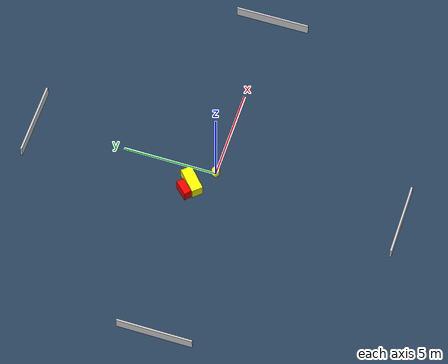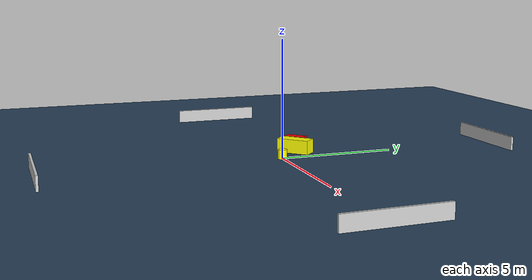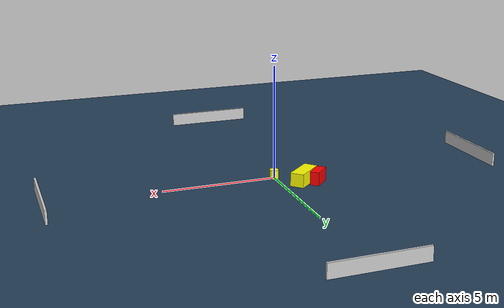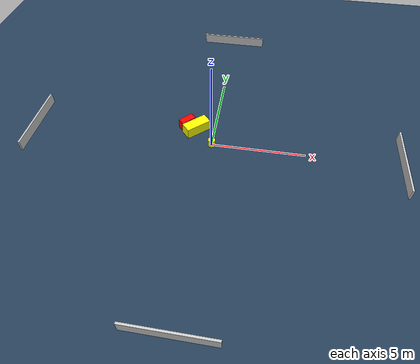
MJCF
<?xml version="1.0" ?>
<mujoco model="generated_environment">
  <option timestep="0.01" integrator="RK4" cone="elliptic"/>
  <default>
    <geom density="1"/>
  </default>
  <asset>
    <texture builtin="gradient" height="3072" name="skybox" rgb1="0.3 0.5 0.7" rgb2="0 0 0" type="skybox" width="512"/>
    <texture builtin="checker" height="300" name="groundplane" rgb1="0.2 0.3 0.4" rgb2="0.1 0.2 0.3" type="2d" width="300"/>
    <material name="groundplane" reflectance="0.2" texrepeat="5 5" texture="groundplane"/>
  </asset>
  <worldbody>
    <light dir="0 0 -1" directional="true" pos="0 0 1.5"/>
    <geom condim="3" friction="0.5 0.005 0.001" material="groundplane" name="floor" pos="0 0 0" size="0 0 0.05" type="plane"/>
    <body name="walls">
      <geom name="wall_1" condim="4" pos="-10.0 0.0 0.3" rgba="0.800000011920929 0.800000011920929 0.800000011920929 1.0" size="0.05 2.0 0.3" type="box"/>
      <geom name="wall_2" condim="4" pos="10.0 0.0 0.3" rgba="0.800000011920929 0.800000011920929 0.800000011920929 1.0" size="0.05 2.0 0.3" type="box"/>
      <geom name="wall_3" condim="4" pos="0.0 -10.0 0.3" rgba="0.800000011920929 0.800000011920929 0.800000011920929 1.0" size="2.0 0.05 0.3" type="box"/>
      <geom name="wall_4" condim="4" pos="0.0 10.0 0.3" rgba="0.800000011920929 0.800000011920929 0.800000011920929 1.0" size="2.0 0.05 0.3" type="box"/>
    </body>
    <body name="robot">
      <joint name="joint_x" type="slide" pos="0 0 0" axis="1 0 0"/>
      <joint name="joint_y" type="slide" pos="0 0 0" axis="0 1 0"/>
      <geom name="robot" type="cylinder" pos="0.0 0.0 0.2" size="0.2 0.2 0.0" mass="5.0" friction="1.0 0.005 0.0001" condim="4" rgba="1.0 1.0 0.0 1.0"/>
    </body>
    <body name="obstacle_1_movable">
      <geom name="obstacle_1_movable" condim="4" pos="-1.0140757176778619 0.9746913422888006 0.3" euler="0 0 222.1695824499183" friction="0.0 0.005 0.001" rgba="1.0 1.0 0.0 1.0" size="0.7181892902104339 0.30725504467708065 0.3" type="box" mass="0.1"/>
      <joint type="free"/>
    </body>
    <body name="obstacle_2_static">
      <geom name="obstacle_2_static" condim="4" pos="-1.5708229238905227 1.2146306716139408 0.3" euler="0 0 316.51317632713216" friction="0.0 0.005 0.001" rgba="1.0 0.0 0.0 1.0" size="0.20700813855297825 0.43383209544475965 0.3" type="box"/>
    </body>
  </worldbody>
  <actuator>
    <motor name="actuator_x" joint="joint_x" gear="1" ctrlrange="-1 1"/>
    <motor name="actuator_y" joint="joint_y" gear="1" ctrlrange="-1 1"/>
  </actuator>
</mujoco>
